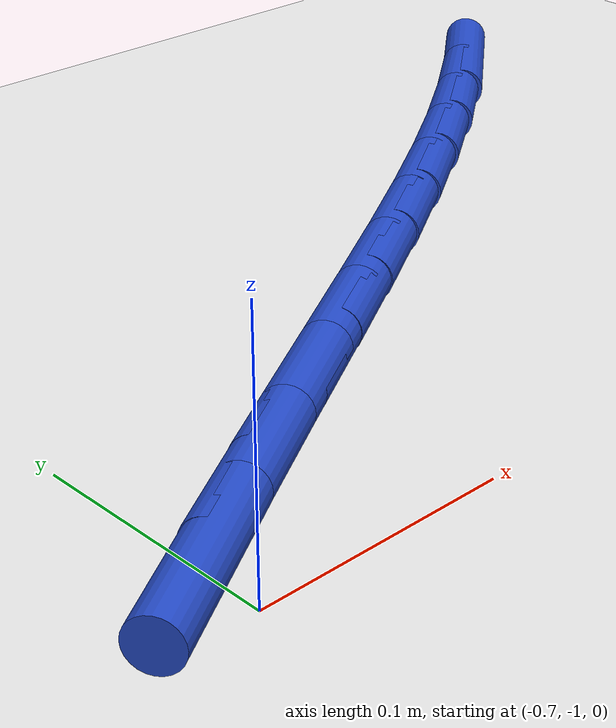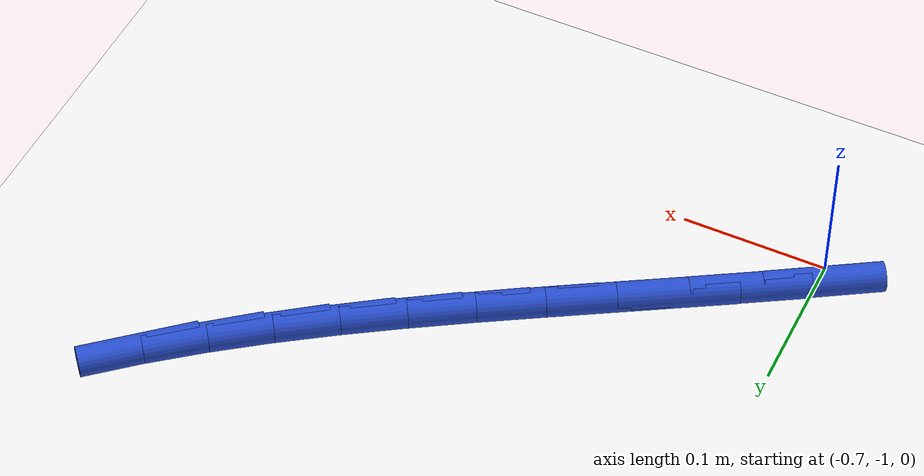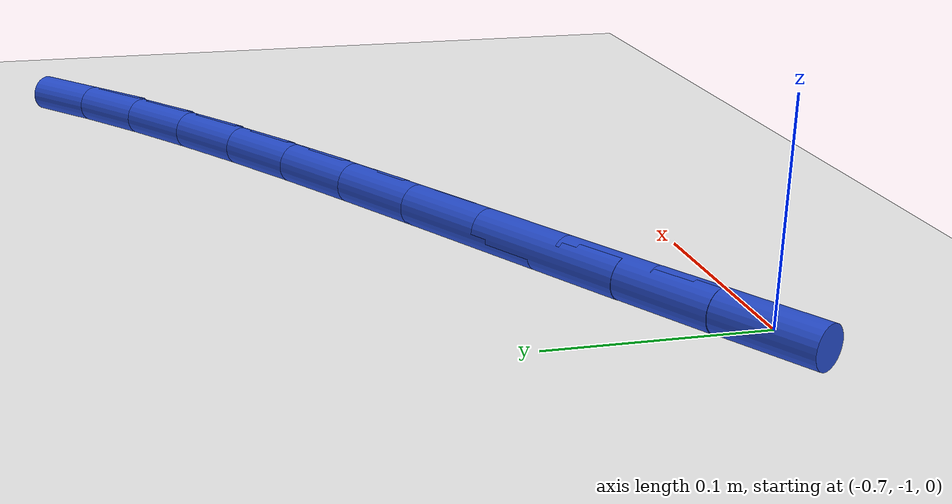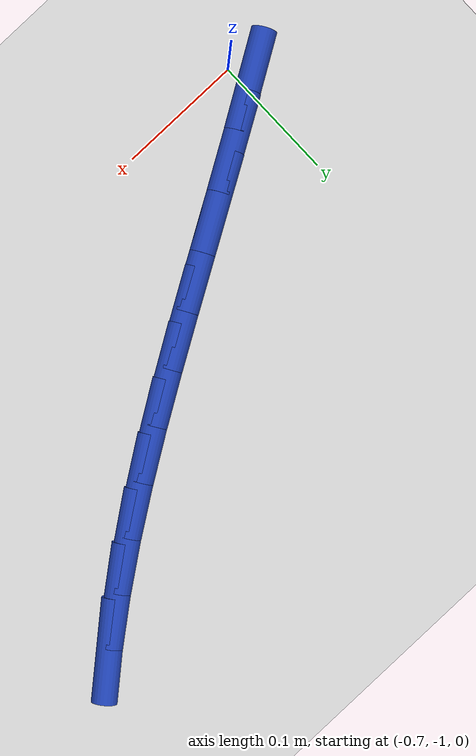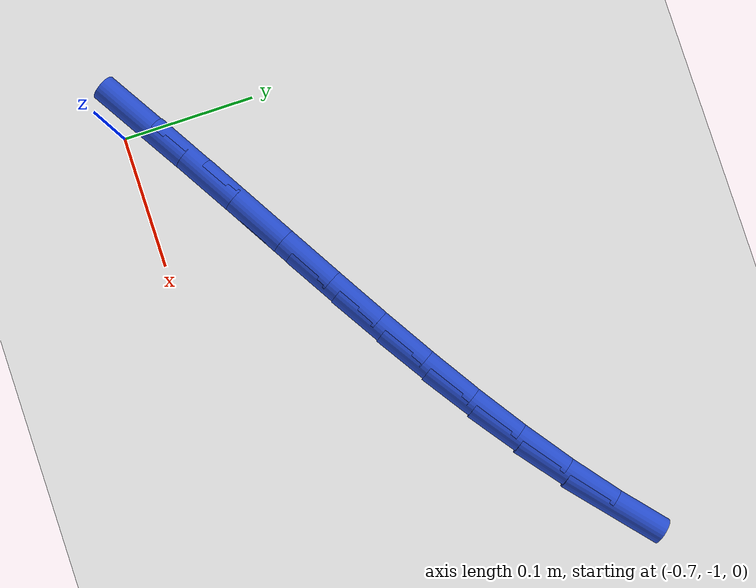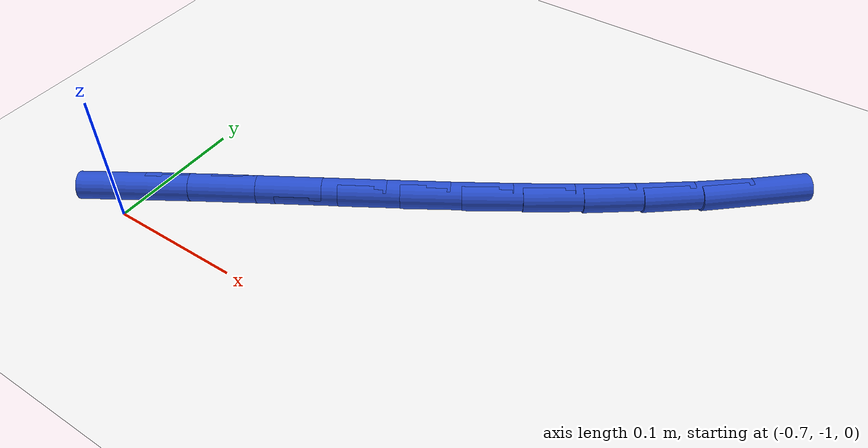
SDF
<sdf version="1.6">
 <world name="default">
  <model name="ground_plane">
   <static>1</static>
   <link name="link">
    <collision name="collision">
     <geometry><plane><normal>0 0 1</normal><size>100 100</size></plane></geometry>
     <surface><friction><ode><mu>100</mu><mu2>50</mu2></ode></friction></surface>
    </collision>
    <visual name="visual">
     <cast_shadows>0</cast_shadows>
     <geometry><plane><normal>0 0 1</normal><size>100 100</size></plane></geometry>
     <material>
      <script><uri>file://media/materials/scripts/gazebo.material</uri><name>Gazebo/WhiteGlow</name></script>
     </material>
    </visual>
   </link>
  </model>
  <model name="line">
   <link name="link_141">
    <pose>-0.7053679715614527 -0.9809076457745001 0.01 0 1.57 0.5525286187382091</pose>
    <collision name="collision">
     <geometry><cylinder><radius>0.01</radius><length>0.08</length></cylinder></geometry>
    </collision>
    <visual name="visual">
     <material>
      <script><name>Gazebo/Blue</name><uri>file://media/materials/scripts/gazebo.material</uri></script>
     </material>
     <geometry><cylinder><radius>0.01</radius><length>0.08</length></cylinder></geometry>
    </visual>
   </link>
   <link name="link_142">
    <pose>-0.6641443826444567 -0.9554896036255855 0.01 0 1.57 0.542094649534377</pose>
    <collision name="collision">
     <geometry><cylinder><radius>0.01</radius><length>0.08</length></cylinder></geometry>
    </collision>
    <visual name="visual">
     <material>
      <script><name>Gazebo/Blue</name><uri>file://media/materials/scripts/gazebo.material</uri></script>
     </material>
     <geometry><cylinder><radius>0.01</radius><length>0.08</length></cylinder></geometry>
    </visual>
   </link>
   <link name="link_143">
    <pose>-0.6236629519570827 -0.9311084274223758 0.01 0 1.57 0.5368396011239984</pose>
    <collision name="collision">
     <geometry><cylinder><radius>0.01</radius><length>0.08</length></cylinder></geometry>
    </collision>
    <visual name="visual">
     <material>
      <script><name>Gazebo/Blue</name><uri>file://media/materials/scripts/gazebo.material</uri></script>
     </material>
     <geometry><cylinder><radius>0.01</radius><length>0.08</length></cylinder></geometry>
    </visual>
   </link>
   <link name="link_144">
    <pose>-0.5839717959760321 -0.9074865633275848 0.01 0 1.57 0.5371665088490334</pose>
    <collision name="collision">
     <geometry><cylinder><radius>0.01</radius><length>0.08</length></cylinder></geometry>
    </collision>
    <visual name="visual">
     <material>
      <script><name>Gazebo/Blue</name><uri>file://media/materials/scripts/gazebo.material</uri></script>
     </material>
     <geometry><cylinder><radius>0.01</radius><length>0.08</length></cylinder></geometry>
    </visual>
   </link>
   <link name="link_145">
    <pose>-0.5451190311780072 -0.8843464575039268 0.01 0 1.57 0.5434381215666423</pose>
    <collision name="collision">
     <geometry><cylinder><radius>0.01</radius><length>0.08</length></cylinder></geometry>
    </collision>
    <visual name="visual">
     <material>
      <script><name>Gazebo/Blue</name><uri>file://media/materials/scripts/gazebo.material</uri></script>
     </material>
     <geometry><cylinder><radius>0.01</radius><length>0.08</length></cylinder></geometry>
    </visual>
   </link>
   <link name="link_146">
    <pose>-0.5071527740397103 -0.8614105561141167 0.01 0 1.57 0.5559633854866551</pose>
    <collision name="collision">
     <geometry><cylinder><radius>0.01</radius><length>0.08</length></cylinder></geometry>
    </collision>
    <visual name="visual">
     <material>
      <script><name>Gazebo/Blue</name><uri>file://media/materials/scripts/gazebo.material</uri></script>
     </material>
     <geometry><cylinder><radius>0.01</radius><length>0.08</length></cylinder></geometry>
    </visual>
   </link>
   <link name="link_147">
    <pose>-0.4701211410378432 -0.8384013053208685 0.01 0 1.57 0.5749771767032464</pose>
    <collision name="collision">
     <geometry><cylinder><radius>0.01</radius><length>0.08</length></cylinder></geometry>
    </collision>
    <visual name="visual">
     <material>
      <script><name>Gazebo/Blue</name><uri>file://media/materials/scripts/gazebo.material</uri></script>
     </material>
     <geometry><cylinder><radius>0.01</radius><length>0.08</length></cylinder></geometry>
    </visual>
   </link>
   <link name="link_148">
    <pose>-0.43407224864910954 -0.8150411512868971 0.01 0 1.57 0.6006121814842865</pose>
    <collision name="collision">
     <geometry><cylinder><radius>0.01</radius><length>0.08</length></cylinder></geometry>
    </collision>
    <visual name="visual">
     <material>
      <script><name>Gazebo/Blue</name><uri>file://media/materials/scripts/gazebo.material</uri></script>
     </material>
     <geometry><cylinder><radius>0.01</radius><length>0.08</length></cylinder></geometry>
    </visual>
   </link>
   <link name="link_149">
    <pose>-0.3990542133502112 -0.7910525401749173 0.01 0 1.57 0.6328633429694377</pose>
    <collision name="collision">
     <geometry><cylinder><radius>0.01</radius><length>0.08</length></cylinder></geometry>
    </collision>
    <visual name="visual">
     <material>
      <script><name>Gazebo/Blue</name><uri>file://media/materials/scripts/gazebo.material</uri></script>
     </material>
     <geometry><cylinder><radius>0.01</radius><length>0.08</length></cylinder></geometry>
    </visual>
   </link>
   <link name="link_150">
    <pose>-0.36511515161785035 -0.7661579181476436 0.01 0 1.57 0.6715478072801396</pose>
    <collision name="collision">
     <geometry><cylinder><radius>0.01</radius><length>0.08</length></cylinder></geometry>
    </collision>
    <visual name="visual">
     <material>
      <script><name>Gazebo/Blue</name><uri>file://media/materials/scripts/gazebo.material</uri></script>
     </material>
     <geometry><cylinder><radius>0.01</radius><length>0.08</length></cylinder></geometry>
    </visual>
   </link>
   <link name="link_151">
    <pose>-0.3323031799287294 -0.7400797313677898 0.01 0 1.57 0.7162666681060577</pose>
    <collision name="collision">
     <geometry><cylinder><radius>0.01</radius><length>0.08</length></cylinder></geometry>
    </collision>
    <visual name="visual">
     <material>
      <script><name>Gazebo/Blue</name><uri>file://media/materials/scripts/gazebo.material</uri></script>
     </material>
     <geometry><cylinder><radius>0.01</radius><length>0.08</length></cylinder></geometry>
    </visual>
   </link>
  </model>
 </world>
</sdf>
